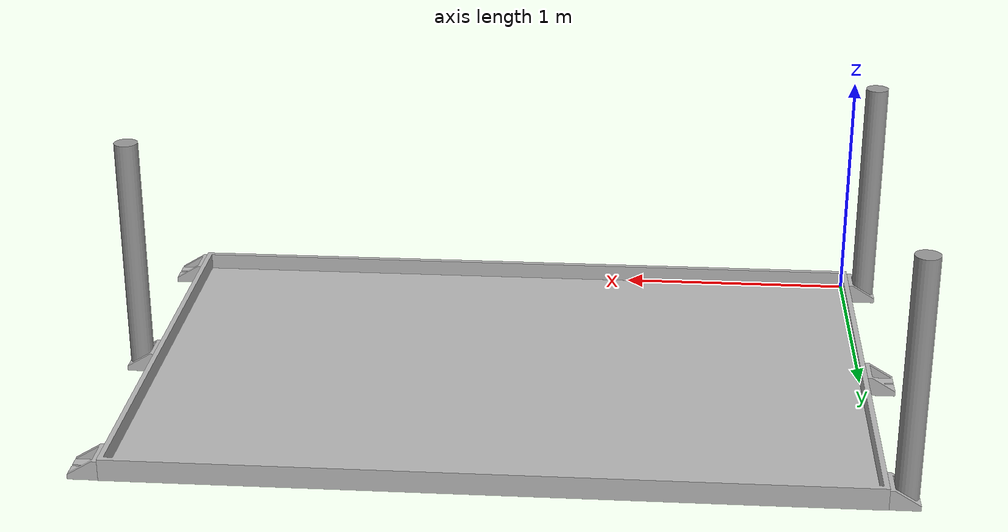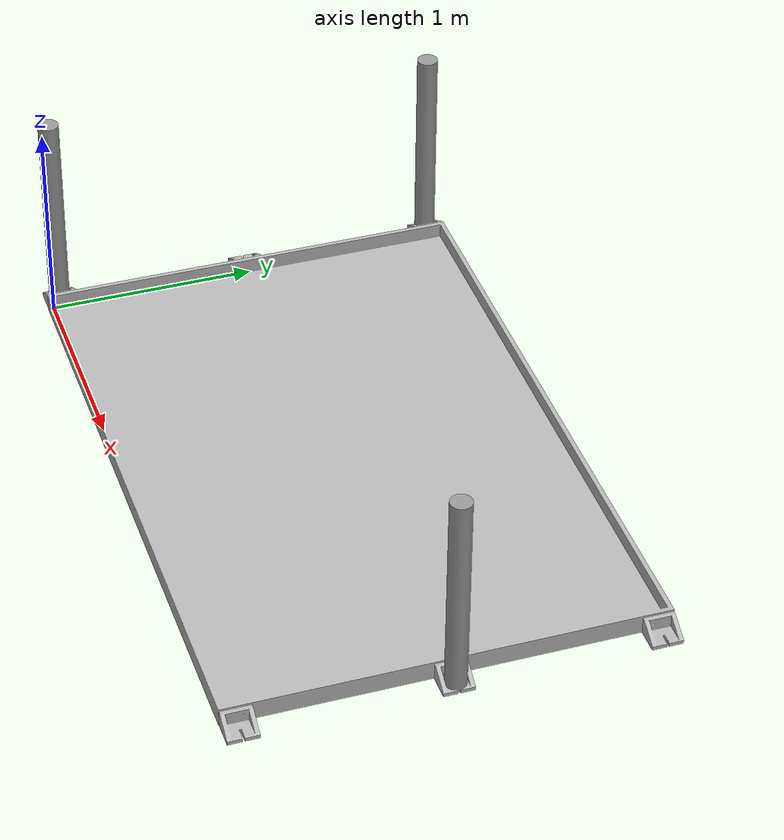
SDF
<?xml version='1.0'?>
<sdf version='1.7'>
  <world name='Eurobot2024'>
    <include>
      <uri>model://sun</uri>
      <pose>0 0 5</pose>
    </include>
    <include>
      <uri>model://fixed_beacon</uri>
      <pose>-0.094 0.052 0.5 0 0 0</pose>
      <name>fixed_beacon_1</name>
    </include>
    <include>
      <uri>model://fixed_beacon</uri>
      <pose>-0.094 1.948 0.5 0 0 0</pose>
      <name>fixed_beacon_2</name>
    </include>
    <include>
      <uri>model://fixed_beacon</uri>
      <pose>3.094 1 0.5 0 0 0</pose>
      <name>fixed_beacon_3</name>
    </include>
    <include>
      <uri>model://playground</uri>
      <pose>1.5 1 0 0 0 0</pose>
    </include>
    <include>
      <uri>model://support</uri>
      <pose>-0.044 0.052 0 0 0 1.57079632679</pose>
      <name>support1</name>
    </include>
    <include>
      <uri>model://support</uri>
      <pose>-0.044 1 0 0 0 1.57079632679</pose>
      <name>support2</name>
    </include>
    <include>
      <uri>model://support</uri>
      <pose>-0.044 1.948 0 0 0 1.57079632679</pose>
      <name>support3</name>
    </include>
    <include>
      <uri>model://support</uri>
      <pose>3.044 0.052 0 0 0 -1.57079632679</pose>
      <name>support4</name>
    </include>
    <include>
      <uri>model://support</uri>
      <pose>3.044 1 0 0 0 -1.57079632679</pose>
      <name>support5</name>
    </include>
    <include>
      <uri>model://support</uri>
      <pose>3.044 1.948 0 0 0 -1.57079632679</pose>
      <name>support6</name>
    </include>
  </world>
</sdf>

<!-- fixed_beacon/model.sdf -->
<sdf version='1.7'>
<model name='fixed_beacon'>
  <pose>0 0 0 0 0 0</pose>
  <static>true</static>
  <link name='link'>
    <inertial>
      <mass>1</mass>
      <inertia>
        <ixx>0.145833</ixx>
        <ixy>0</ixy>
        <ixz>0</ixz>
        <iyy>0.145833</iyy>
        <iyz>0</iyz>
        <izz>0.125</izz>
      </inertia>
      <pose>0 0 0 0 -0 0</pose>
    </inertial>
    <collision name='collision'>
      <geometry>
        <cylinder>
          <radius>0.05</radius>
          <length>1</length>
        </cylinder>
      </geometry>
      <max_contacts>10</max_contacts>
      <surface>
        <contact>
          <ode />
        </contact>
        <bounce />
        <friction>
          <torsional>
            <ode />
          </torsional>
          <ode />
        </friction>
      </surface>
    </collision>
    <visual name='visual'>
      <geometry>
        <cylinder>
          <radius>0.05</radius>
          <length>1</length>
        </cylinder>
      </geometry>
      <material>
        <script>
          <name>Gazebo/Grey</name>
          <uri>file://media/materials/scripts/gazebo.material</uri>
        </script>
      </material>
    </visual>
  </link>
</model>
</sdf>

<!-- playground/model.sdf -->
<sdf version='1.7'>
<model name='playground'>
  <pose>0 0 0 0 0 0</pose>
  <static>true</static>
  <link name='link'>
    <inertial>
      <mass>1</mass>
      <inertia>
        <ixx>0</ixx>
        <ixy>0</ixy>
        <ixz>0</ixz>
        <iyy>0</iyy>
        <iyz>0</iyz>
        <izz>0</izz>
      </inertia>
      <pose>0 0 0 0 0 0</pose>
    </inertial>
    <collision name='collision'>
      <geometry>
        <mesh>
          <uri>model://playground/meshes/table_2024.obj</uri>
          <scale>0.001 0.001 0.001</scale>
        </mesh>
      </geometry>
      <max_contacts>10</max_contacts>
      <surface>
        <contact>
          <ode />
        </contact>
        <bounce />
        <friction>
          <torsional>
            <ode />
          </torsional>
          <ode />
        </friction>
      </surface>
    </collision>
    <visual name='visual'>
      <geometry>
        <mesh>
          <uri>model://playground/meshes/table_2024.obj</uri>
          <scale>0.001 0.001 0.001</scale>
        </mesh>
      </geometry>
    </visual>
  </link>
</model>
</sdf>

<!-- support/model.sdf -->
<sdf version='1.7'>
<model name='support'>
  <pose>0 0 0 0 0 0</pose>
  <static>true</static>
  <link name='link'>
    <inertial>
      <mass>1</mass>
      <inertia>
        <ixx>0</ixx>
        <ixy>0</ixy>
        <ixz>0</ixz>
        <iyy>0</iyy>
        <iyz>0</iyz>
        <izz>0</izz>
      </inertia>
      <pose>0 0 0 0 0 0</pose>
    </inertial>
    <collision name='collision'>
      <geometry>
        <mesh>
          <uri>model://support/meshes/support_balise.obj</uri>
          <scale>0.001 0.001 0.001</scale>
        </mesh>
      </geometry>
      <max_contacts>10</max_contacts>
      <surface>
        <contact>
          <ode />
        </contact>
        <bounce />
        <friction>
          <torsional>
            <ode />
          </torsional>
          <ode />
        </friction>
      </surface>
    </collision>
    <visual name='visual'>
      <geometry>
        <mesh>
          <uri>model://support/meshes/support_balise.obj</uri>
          <scale>0.001 0.001 0.001</scale>
        </mesh>
      </geometry>
    </visual>
  </link>
</model>
</sdf>
